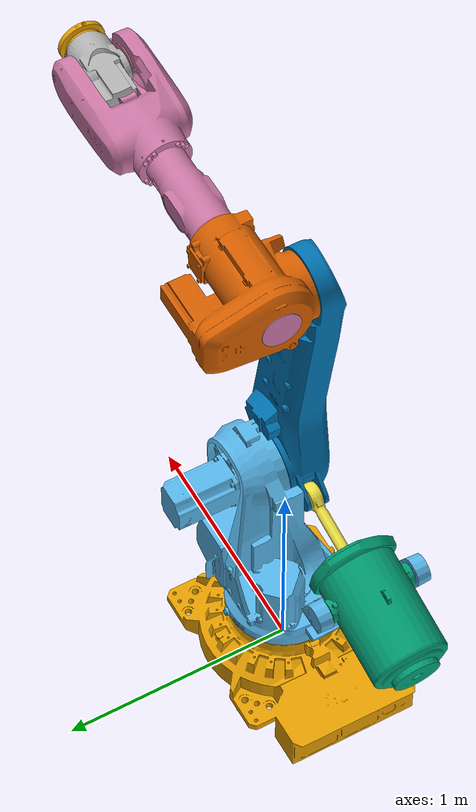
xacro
<?xml version="1.0" ?>

<robot name="abb_irb6700_200_260" xmlns:xacro="http://ros.org/wiki/xacro">
  <xacro:include filename="$(find abb_irb6700_gazebo)/urdf/irb6700_200_260_macro.xacro" />
  <xacro:include filename="$(find abb_irb6700_gazebo)/urdf/gazebo_config_control.xacro" />

  <xacro:abb_irb6700_200_260_gazebo prefix="" />

  <!-- connect robot with world -->
  <link name="world" />
  <joint name="world_fixed" type="fixed">
    <origin xyz="0 0 0" rpy="0 0 0"/>
    <parent link="world"/>
    <child link="base_link"/>
  </joint>

  <xacro:config_ctr_gazebo prefix=""/>

</robot>

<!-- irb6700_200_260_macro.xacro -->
<robot xmlns:xacro="http://ros.org/wiki/xacro">
  <xacro:include filename="$(find abb_irb6700_support)/urdf/irb6700_200_260_macro.xacro" />
  <xacro:macro name="abb_irb6700_200_260_gazebo" params="prefix">

    <!-- get base ABB irb6700 model -->
    <xacro:abb_irb6700_200_260 prefix="${prefix}" />

    <!-- transmission list -->

    <!-- Gazebo-specific link properties -->

  </xacro:macro>
</robot>

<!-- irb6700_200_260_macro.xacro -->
<robot xmlns:xacro="http://ros.org/wiki/xacro">
  <xacro:macro name="abb_irb6700_200_260" params="prefix">
    <xacro:include filename="$(find abb_resources)/urdf/common_materials.xacro" />
    <!-- link list -->
    <link name="${prefix}base_link">
      <inertial>
        <origin rpy="0 0 0" xyz="-0.10855559016786254 4.5170991954298754e-05 0.13955856637596703" />
        <mass value="92.0108417726865" />
        <inertia ixx="0.003996689745423826" ixy="-1.1334066156211666e-07" ixz="-0.00035904256749446446" iyy="0.007754638386116473" iyz="-2.1423836334408407e-08" izz="0.009875568703575595" />
      </inertial>
      <visual>
        <origin xyz="0 0 0" rpy="0 0 0" />
        <geometry>
          <mesh filename="file:///$(find abb_irb6700_support)/meshes/irb6700/visual/base_link.stl" />
        </geometry>
        <xacro:material_abb_white />
      </visual>
      <collision>
        <origin xyz="0 0 0" rpy="0 0 0" />
        <geometry>
          <mesh filename="file:///$(find abb_irb6700_support)/meshes/irb6700/collision/base_link.stl" />
        </geometry>
        <xacro:material_abb_yellow />
      </collision>
    </link>
    <link name="${prefix}link_1">
      <inertial>
        <origin rpy="0 0 0" xyz="0.1589031786690762 0.02389950045800099 -0.16386595421712602" />
        <mass value="54.5977272371089" />
        <inertia ixx="0.0035202600221374003" ixy="-0.0005731460972213275" ixz="-0.0015392362691559066" iyy="0.005543127273465252" iyz="-0.00018865105437574197" izz="0.004743201499752353" />
      </inertial>
      <visual>
        <origin xyz="0 0 0" rpy="0 0 0" />
        <geometry>
          <mesh filename="file:///$(find abb_irb6700_support)/meshes/irb6700/visual/link_1.stl" />
        </geometry>
        <xacro:material_abb_white />
      </visual>
      <collision>
        <origin xyz="0 0 0" rpy="0 0 0" />
        <geometry>
          <mesh filename="file:///$(find abb_irb6700_support)/meshes/irb6700/collision/link_1.stl" />
        </geometry>
        <xacro:material_abb_yellow />
      </collision>
    </link>
    <link name="${prefix}cylinder">
      <inertial>
        <origin rpy="0 0 0" xyz="-0.09654269450813271 -1.079357385664413e-05 -0.02043658452261234" />
        <mass value="38.4204622737612" />
        <inertia ixx="0.0007640349272363187" ixy="4.220964180995403e-08" ixz="-0.00017919198831434745" iyy="0.0015987089881165561" iyz="3.1304802100277813e-09" izz="0.0015703839479117852" />
      </inertial>
      <visual>
        <origin xyz="0 0 0" rpy="0 0 0" />
        <geometry>
          <mesh filename="file:///$(find abb_irb6700_support)/meshes/irb6700/visual/cylinder.stl" />
        </geometry>
        <xacro:material_abb_white />
      </visual>
      <collision>
        <origin xyz="0 0 0" rpy="0 0 0" />
        <geometry>
          <mesh filename="file:///$(find abb_irb6700_support)/meshes/irb6700/collision/cylinder.stl" />
        </geometry>
        <xacro:material_abb_yellow />
      </collision>
    </link>
    <link name="${prefix}piston">
      <inertial>
        <origin rpy="0 0 0" xyz="7.030760061958125e-05 0.2452351320264397 1.1383891396759235e-05" />
        <mass value="12.339985132202377" />
        <inertia ixx="6.770708163470597e-05" ixy="-1.3541188504025166e-08" ixz="2.9560655219660683e-11" iyy="8.355423161262474e-07" iyz="-3.977403219825737e-09" izz="6.739658108209847e-05" />
      </inertial>
      <visual>
        <origin xyz="0 0 0" rpy="0 0 0" />
        <geometry>
          <mesh filename="file:///$(find abb_irb6700_support)/meshes/irb6700/visual/piston.stl" />
        </geometry>
        <xacro:material_abb_white />
      </visual>
      <collision>
        <origin xyz="0 0 0" rpy="0 0 0" />
        <geometry>
          <mesh filename="file:///$(find abb_irb6700_support)/meshes/irb6700/collision/piston.stl" />
        </geometry>
        <xacro:material_abb_yellow />
      </collision>
    </link>
    <link name="${prefix}link_2">
      <inertial>
        <origin rpy="0 0 0" xyz="0.044979172309568397 -0.2660799082351537 0.5346057200867603" />
        <mass value="50.6743291699327" />
        <inertia ixx="0.0064348391946592596" ixy="9.070502480167988e-06" ixz="0.00019543977083019204" iyy="0.006717331141489154" iyz="0.0005991261667175189" izz="0.0008971369263712823" />
      </inertial>

      <visual>
        <origin xyz="0 0 0" rpy="0 0 0" />
        <geometry>
          <mesh filename="file:///$(find abb_irb6700_support)/meshes/irb6700_200_260/visual/link_2.stl" />
        </geometry>
        <xacro:material_abb_white />
      </visual>
      <collision>
        <origin xyz="0 0 0" rpy="0 0 0" />
        <geometry>
          <mesh filename="file:///$(find abb_irb6700_support)/meshes/irb6700_200_260/collision/link_2.stl" />
        </geometry>
        <xacro:material_abb_yellow />
      </collision>
    </link>
    <link name="${prefix}link_3">
      <inertial>
        <origin rpy="0 0 0" xyz="-0.044726081733450926 0.0016009851348857981 0.11190247606299264" />
        <mass value="40.06185344461613" />
        <inertia ixx="0.0019214126752920494" ixy="0.00026548615211387477" ixz="0.00018931102654043324" iyy="0.0015642798452755035" iyz="-0.00034683751326580476" izz="0.001973251442301816" />
      </inertial>
      <visual>
        <origin xyz="0 0 0" rpy="0 0 0" />
        <geometry>
          <mesh filename="file:///$(find abb_irb6700_support)/meshes/irb6700_200_260/visual/link_3.stl" />
        </geometry>
        <xacro:material_abb_white />
      </visual>
      <collision>
        <origin xyz="0 0 0" rpy="0 0 0" />
        <geometry>
          <mesh filename="file:///$(find abb_irb6700_support)/meshes/irb6700_200_260/collision/link_3.stl" />
        </geometry>
        <xacro:material_abb_yellow />
      </collision>
    </link>
    <link name="${prefix}link_4">
      <inertial>
        <origin rpy="0 0 0" xyz="0.6268602699917565 -0.002515683835374019 1.3740109674158836e-05" />
        <mass value="44.87688227769655" />
        <inertia ixx="0.0006711476925628299" ixy="9.066910852068699e-05" ixz="-5.636088278495086e-07" iyy="0.009522639870081314" iyz="1.6718992045398534e-07" izz="0.009850034450865262" />
      </inertial>

      <visual>
        <origin xyz="0 0 0" rpy="0 0 0" />
        <geometry>
          <mesh filename="file:///$(find abb_irb6700_support)/meshes/irb6700_200_260/visual/link_4.stl" />
        </geometry>
        <xacro:material_abb_white />
      </visual>
      <collision>
        <origin xyz="0 0 0" rpy="0 0 0" />
        <geometry>
          <mesh filename="file:///$(find abb_irb6700_support)/meshes/irb6700_200_260/collision/link_4.stl" />
        </geometry>
        <xacro:material_abb_yellow />
      </collision>
    </link>
    <link name="${prefix}link_5">
      <inertial>
        <origin rpy="0 0 0" xyz="0.016082766968828318 0.003469156663341444 -0.0016584952415219863"/>
        <mass value="59.52834589582224"/>
        <inertia ixx="3.131188577981427e-05" ixy="1.915377762235513e-06" ixz="1.2197175783721276e-06" iyy="7.49535334980292e-05" iyz="4.960622490574281e-07" izz="8.020120702684806e-05"/>
     </inertial>
      <visual>
        <origin xyz="0 0 0" rpy="0 0 0" />
        <geometry>
          <mesh filename="file:///$(find abb_irb6700_support)/meshes/irb6700/visual/link_5.stl" />
        </geometry>
        <xacro:material_abb_white />
      </visual>
      <collision>
        <origin xyz="0 0 0" rpy="0 0 0" />
        <geometry>
          <mesh filename="file:///$(find abb_irb6700_support)/meshes/irb6700/collision/link_5.stl" />
        </geometry>
        <xacro:material_abb_yellow />
      </collision>
    </link>
    <link name="${prefix}link_6">
      <inertial>
        <origin rpy="0 0 0" xyz="-0.017990847205242654 1.807753889679926e-05 -0.00024119990841147548"/>
        <mass value="5.5456370799534085"/>
        <inertia ixx="3.851933969155547e-06" ixy="-1.425218832397648e-10" ixz="6.857112670058758e-10" iyy="1.990451258407013e-06" iyz="-1.4228320838802587e-09" izz="2.0046522003612565e-06"/>
     </inertial>
      <visual>
        <origin xyz="0 0 0" rpy="0 0 0" />
        <geometry>
          <mesh filename="file:///$(find abb_irb6700_support)/meshes/irb6700/visual/link_6.stl" />
        </geometry>
        <xacro:material_abb_white />
      </visual>
      <collision>
        <origin xyz="0 0 0" rpy="0 0 0" />
        <geometry>
          <mesh filename="file:///$(find abb_irb6700_support)/meshes/irb6700/collision/link_6.stl" />
        </geometry>
        <xacro:material_abb_yellow />
      </collision>
    </link>

    <joint name="${prefix}joint_1" type="revolute">
      <origin xyz="0 0 0.78" rpy="0 0 0" />
      <parent link="${prefix}base_link" />
      <child link="${prefix}link_1" />
      <axis xyz="0 0 1" />
      <limit lower="-${radians(170)}" upper="${radians(170)}" effort="0" velocity="${radians(110)}" />
    </joint>
    <joint name="${prefix}joint_2" type="revolute">
      <origin xyz="0.32 0 0" rpy="0 0 0" />
      <parent link="${prefix}link_1" />
      <child link="${prefix}link_2" />
      <axis xyz="0 1 0" />
      <limit lower="-${radians(65)}" upper="${radians(85)}" effort="0" velocity="${radians(110)}" />
    </joint>
    <joint name="${prefix}joint_3" type="revolute">
      <origin xyz="0 0 1.125" rpy="0 0 0" />
      <parent link="${prefix}link_2" />
      <child link="${prefix}link_3" />
      <axis xyz="0 1 0" />
      <limit lower="-${radians(180)}" upper="${radians(70)}" effort="0" velocity="${radians(110)}" />
    </joint>
    <joint name="${prefix}joint_4" type="revolute">
      <origin xyz="0 0 0.2" rpy="0 0 0" />
      <parent link="${prefix}link_3" />
      <child link="${prefix}link_4" />
      <axis xyz="1 0 0" />
      <limit lower="-${radians(300)}" upper="${radians(300)}" effort="0" velocity="${radians(190)}" />
    </joint>
    <joint name="${prefix}joint_5" type="revolute">
      <origin xyz="1.1425 0 0" rpy="0 0 0" />
      <parent link="${prefix}link_4" />
      <child link="${prefix}link_5" />
      <axis xyz="0 1 0" />
      <limit lower="-${radians(130)}" upper="${radians(130)}" effort="0" velocity="${radians(150)}" />
    </joint>
    <joint name="${prefix}joint_6" type="revolute">
      <origin xyz="0.2 0 0" rpy="0 0 0" />
      <parent link="${prefix}link_5" />
      <child link="${prefix}link_6" />
      <axis xyz="1 0 0" />
      <limit lower="-${radians(360)}" upper="${radians(360)}" effort="0" velocity="${radians(210)}" />
    </joint>
    <joint name="${prefix}cylinder_joint" type="revolute">
      <origin xyz="-0.349 -0.194 -0.142" rpy="0 0 0" />
      <parent link="${prefix}link_1" />
      <child link="${prefix}cylinder" />
      <axis xyz="0 1 0" />
      <mimic joint="${prefix}joint_2" multiplier="-0.25" />
      <limit lower="-${radians(65*0.25)}" upper="${radians(85*0.25)}" effort="0" velocity="100" />
    </joint>
    <joint name="${prefix}piston_joint" type="prismatic">
      <origin xyz="0 0 0" rpy="0.20897 0 -${radians(90)}" />
      <parent link="${prefix}cylinder" />
      <child link="${prefix}piston" />
      <axis xyz="0 1 0" />
      <mimic joint="${prefix}joint_2" multiplier="0.15" />
      <limit lower="-0.25" upper="0.25" effort="0" velocity="100" />
    </joint>

    <!-- ROS-Industrial 'base' frame: base_link to ABB World Coordinates transform -->
    <link name="${prefix}base" />
    <joint name="${prefix}base_link-base" type="fixed">
      <origin xyz="0 0 0" rpy="0 0 0" />
      <parent link="${prefix}base_link" />
      <child link="${prefix}base" />
    </joint>

    <!-- ROS-Industrial 'flange' frame: attachment point for EEF models -->
    <link name="${prefix}flange" />
    <joint type="fixed" name="${prefix}joint_6-flange">
      <origin xyz="0 0 0" rpy="0 0 0" />
      <parent link="${prefix}link_6" />
      <child link="${prefix}flange" />
    </joint>

    <!-- ROS-Industrial 'tool0' frame: all-zeros tool frame -->
    <link name="${prefix}tool0" />
    <joint name="${prefix}link_6-tool0" type="fixed">
      <origin xyz="0 0 0" rpy="0 ${radians(90)} 0" />
      <parent link="${prefix}flange" />
      <child link="${prefix}tool0" />
    </joint>
  </xacro:macro>
</robot>
